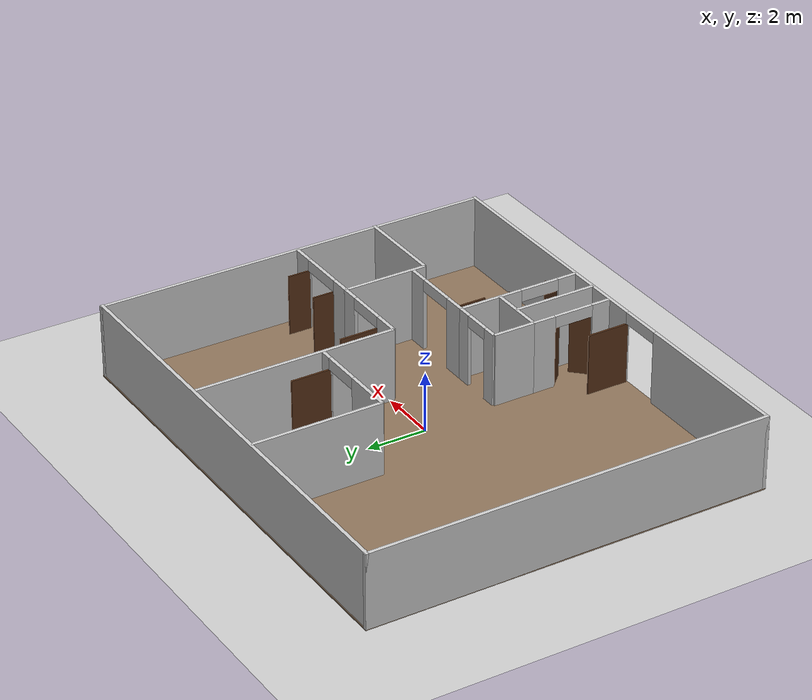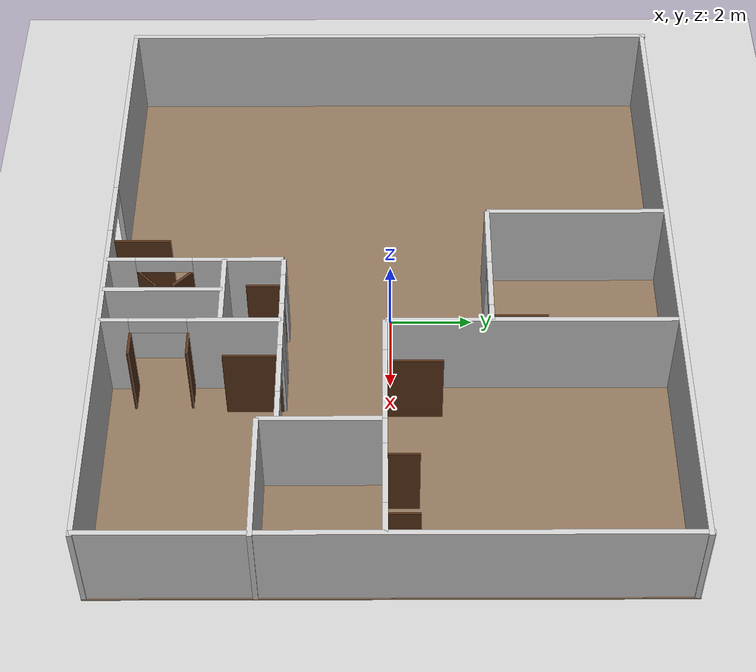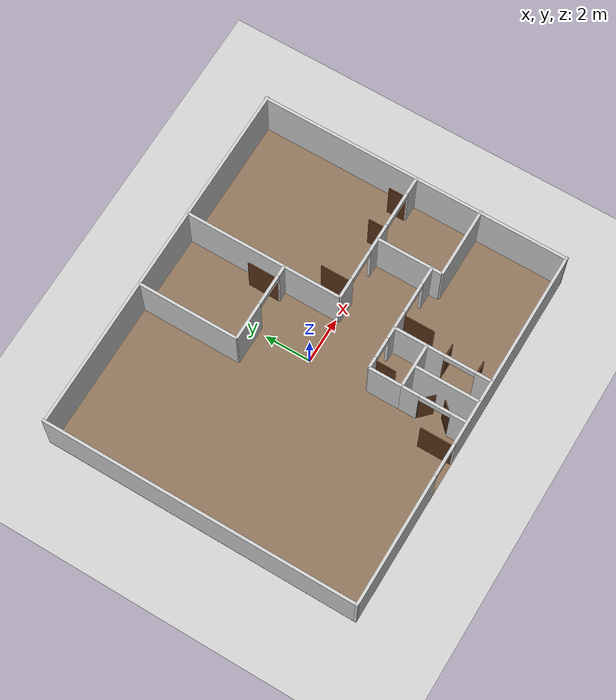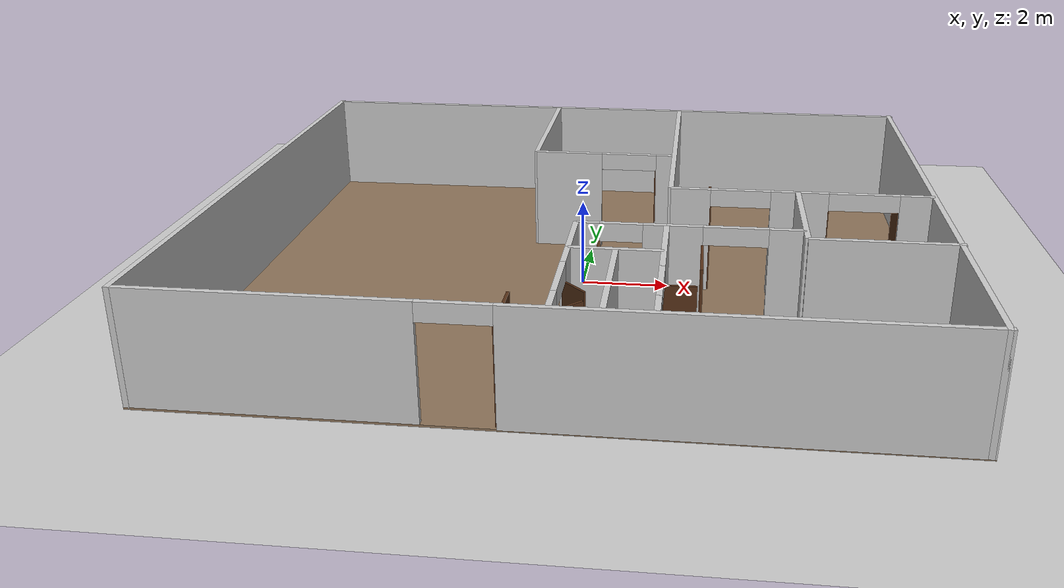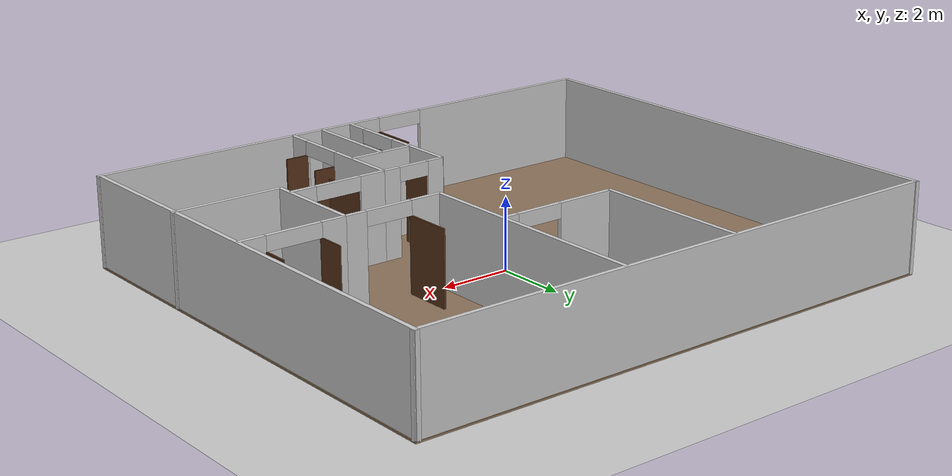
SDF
<?xml version="1.0" ?>
<sdf version="1.6">
  <world name="default">

    <!-- Plugin for simulating physics -->
    <plugin
      filename="gz-sim-physics-system"
      name="gz::sim::systems::Physics">
    </plugin>

    <!-- Plugin for handling user commands -->
    <plugin
      filename="gz-sim-user-commands-system"
      name="gz::sim::systems::UserCommands">
    </plugin>

    <!-- Plugin for broadcasting scene updates -->
    <plugin
      filename="gz-sim-scene-broadcaster-system"
      name="gz::sim::systems::SceneBroadcaster">
    </plugin>

    <!-- Plugin for handling sensors like the LIDAR -->
    <plugin
      filename="gz-sim-sensors-system"
      name="gz::sim::systems::Sensors">
      <render_engine>ogre2</render_engine>
    </plugin>

    <!-- Plugin for IMU -->
    <plugin filename="gz-sim-imu-system"
      name="gz::sim::systems::Imu">
    </plugin>

     <light type="directional" name="sun">
      <cast_shadows>false</cast_shadows>
      <pose>0 0 10 0 0 0</pose>
      <diffuse>1 1 1 1</diffuse>
      <specular>0.5 0.5 0.5 1</specular>
      <attenuation>
        <range>1000</range>
        <constant>0.9</constant>
        <linear>0.01</linear>
        <quadratic>0.001</quadratic>
      </attenuation>
      <direction>-0.5 0.1 -0.9</direction>
    </light>

    <model name="ground_plane">
      <static>true</static>
      <link name="link">
        <collision name="collision">
          <geometry>
            <plane>
              <normal>0 0 1</normal>
              <size>100 100</size>
            </plane>
          </geometry>
          <surface>
            <friction>
              <ode>
                <mu>1.0</mu>
                <mu2>1.0</mu2>
              </ode>
            </friction>
          </surface>
        </collision>
        <visual name="visual">
          <geometry>
            <plane>
              <normal>0 0 1</normal>
              <size>100 100</size>
            </plane>
          </geometry>
          <material>
            <ambient>0.8 0.8 0.8 1</ambient>
            <diffuse>0.8 0.8 0.8 1</diffuse>
            <specular>0.8 0.8 0.8 1</specular>
          </material>
        </visual>
      </link>
    </model>
<model name="house_walls">
  <static>true</static>
  <pose>-7.9575 -6.8025 0 0 0 0</pose>

  <link name="walls">

    <!-- EXTERIOR WALLS                                    -->

    <!-- Left exterior -->
    <collision name="left_ext_collision">
      <pose>0.06 6.8025 1.25 0 0 0</pose>
      <geometry>
        <box><size>0.12 13.605 2.5</size></box>
      </geometry>
    </collision>

    <visual name="left_ext_visual">
      <pose>0.06 6.8025 1.25 0 0 0</pose>
      <geometry>
        <box><size>0.12 13.605 2.5</size></box>
      </geometry>
      <material>
        <ambient>0.8 0.8 0.8 1</ambient>
        <diffuse>0.8 0.8 0.8 1</diffuse>
        <specular>0.4 0.4 0.4 1</specular>
      </material>
    </visual>

    <!-- Right exterior -->
    <collision name="right_ext_collision">
      <pose>15.825 6.8025 1.25 0 0 0</pose>
      <geometry>
        <box><size>0.12 13.605 2.5</size></box>
      </geometry>
    </collision>

    <visual name="right_ext_visual">
      <pose>15.825 6.8025 1.25 0 0 0</pose>
      <geometry>
        <box><size>0.12 13.605 2.5</size></box>
      </geometry>
      <material>
        <ambient>0.8 0.8 0.8 1</ambient>
        <diffuse>0.8 0.8 0.8 1</diffuse>
        <specular>0.4 0.4 0.4 1</specular>
      </material>
    </visual>

    <!-- Back wall -->
    <collision name="back_collision">
      <pose>7.9575 13.515 1.25 0 0 0</pose>
      <geometry>
        <box><size>15.915 0.12 2.5</size></box>
      </geometry>
    </collision>

    <visual name="back_visual">
      <pose>7.9575 13.515 1.25 0 0 0</pose>
      <geometry>
        <box><size>15.915 0.12 2.5</size></box>
      </geometry>
      <material>
        <ambient>0.8 0.8 0.8 1</ambient>
        <diffuse>0.8 0.8 0.8 1</diffuse>
        <specular>0.4 0.4 0.4 1</specular>
      </material>
    </visual>

    <!-- Front wall LEFT of front door -->
    <collision name="front_left_collision">
      <pose>2.85 0.06 1.25 0 0 0</pose>
      <geometry>
        <box><size>5.70 0.12 2.5</size></box>
      </geometry>
    </collision>

    <visual name="front_left_visual">
      <pose>2.85 0.06 1.25 0 0 0</pose>
      <geometry>
        <box><size>5.70 0.12 2.5</size></box>
      </geometry>
      <material>
        <ambient>0.8 0.8 0.8 1</ambient>
        <diffuse>0.8 0.8 0.8 1</diffuse>
        <specular>0.4 0.4 0.4 1</specular>
      </material>
    </visual>

    <!-- Front wall RIGHT of front door -->
    <!-- Front door opening is about 1.43 m wide -->

    <collision name="front_right_collision">
      <pose>11.52 0.06 1.25 0 0 0</pose>
      <geometry>
        <box><size>8.79 0.12 2.5</size></box>
      </geometry>
    </collision>

    <visual name="front_right_visual">
      <pose>11.52 0.06 1.25 0 0 0</pose>
      <geometry>
        <box><size>8.79 0.12 2.5</size></box>
      </geometry>
      <material>
        <ambient>0.8 0.8 0.8 1</ambient>
        <diffuse>0.8 0.8 0.8 1</diffuse>
        <specular>0.4 0.4 0.4 1</specular>
      </material>
    </visual>

    <!-- BATHROOM                                          -->

    <collision name="bath_left_collision">
      <pose>6.525 11.325 1.25 0 0 0</pose>
      <geometry>
        <box><size>0.12 4.38 2.5</size></box>
      </geometry>
    </collision>

    <visual name="bath_left_visual">
      <pose>6.525 11.325 1.25 0 0 0</pose>
      <geometry>
        <box><size>0.12 4.38 2.5</size></box>
      </geometry>
      <material>
        <ambient>0.8 0.8 0.8 1</ambient>
        <diffuse>0.8 0.8 0.8 1</diffuse>
        <specular>0.4 0.4 0.4 1</specular>
      </material>
    </visual>

    <collision name="bath_right_collision">
      <pose>9.975 10.095 1.25 0 0 0</pose>
      <geometry>
        <box><size>0.12 6.84 2.5</size></box>
      </geometry>
    </collision>

    <visual name="bath_right_visual">
      <pose>9.975 10.095 1.25 0 0 0</pose>
      <geometry>
        <box><size>0.12 6.84 2.5</size></box>
      </geometry>
      <material>
        <ambient>0.8 0.8 0.8 1</ambient>
        <diffuse>0.8 0.8 0.8 1</diffuse>
        <specular>0.4 0.4 0.4 1</specular>
      </material>
    </visual>

    <!-- Bathroom lower wall LEFT of doorway -->
    <collision name="bath_bottom_left_collision">
      <pose>7.35 9.15 1.25 0 0 0</pose>
      <geometry>
        <box><size>1.65 0.12 2.5</size></box>
      </geometry>
    </collision>

    <visual name="bath_bottom_left_visual">
      <pose>7.35 9.15 1.25 0 0 0</pose>
      <geometry>
        <box><size>1.65 0.12 2.5</size></box>
      </geometry>
      <material>
        <ambient>0.8 0.8 0.8 1</ambient>
        <diffuse>0.8 0.8 0.8 1</diffuse>
        <specular>0.4 0.4 0.4 1</specular>
      </material>
    </visual>

    <!-- Bathroom lower wall RIGHT of doorway -->
    <collision name="bath_bottom_right_collision">
      <pose>9.75 9.15 1.25 0 0 0</pose>
      <geometry>
        <box><size>0.45 0.12 2.5</size></box>
      </geometry>
    </collision>

    <visual name="bath_bottom_right_visual">
      <pose>9.75 9.15 1.25 0 0 0</pose>
      <geometry>
        <box><size>0.45 0.12 2.5</size></box>
      </geometry>
      <material>
        <ambient>0.8 0.8 0.8 1</ambient>
        <diffuse>0.8 0.8 0.8 1</diffuse>
        <specular>0.4 0.4 0.4 1</specular>
      </material>
    </visual>

    <!-- BEDROOM                                           -->

    <collision name="bed_bottom_left_collision">
      <pose>10.425 6.675 1.25 0 0 0</pose>
      <geometry>
        <box><size>0.90 0.12 2.5</size></box>
      </geometry>
    </collision>

    <visual name="bed_bottom_left_visual">
      <pose>10.425 6.675 1.25 0 0 0</pose>
      <geometry>
        <box><size>0.90 0.12 2.5</size></box>
      </geometry>
      <material>
        <ambient>0.8 0.8 0.8 1</ambient>
        <diffuse>0.8 0.8 0.8 1</diffuse>
        <specular>0.4 0.4 0.4 1</specular>
      </material>
    </visual>

    <!-- Bedroom doorway -->

    <collision name="bed_bottom_right_collision">
      <pose>12.525 6.675 1.25 0 0 0</pose>
      <geometry>
        <box><size>0.60 0.12 2.5</size></box>
      </geometry>
    </collision>

    <visual name="bed_bottom_right_visual">
      <pose>12.525 6.675 1.25 0 0 0</pose>
      <geometry>
        <box><size>0.60 0.12 2.5</size></box>
      </geometry>
      <material>
        <ambient>0.8 0.8 0.8 1</ambient>
        <diffuse>0.8 0.8 0.8 1</diffuse>
        <specular>0.4 0.4 0.4 1</specular>
      </material>
    </visual>

    <!-- MASTER CLOSET                                     -->

    <collision name="master_closet_left_collision">
      <pose>12.825 5.25 1.25 0 0 0</pose>
      <geometry>
        <box><size>0.12 2.85 2.5</size></box>
      </geometry>
    </collision>

    <visual name="master_closet_left_visual">
      <pose>12.825 5.25 1.25 0 0 0</pose>
      <geometry>
        <box><size>0.12 2.85 2.5</size></box>
      </geometry>
      <material>
        <ambient>0.8 0.8 0.8 1</ambient>
        <diffuse>0.8 0.8 0.8 1</diffuse>
        <specular>0.4 0.4 0.4 1</specular>
      </material>
    </visual>

    <collision name="closet_top_left_collision">
      <pose>13.17 6.675 1.25 0 0 0</pose>
      <geometry>
        <box><size>0.69 0.12 2.5</size></box>
      </geometry>
    </collision>

    <visual name="closet_top_left_visual">
      <pose>13.17 6.675 1.25 0 0 0</pose>
      <geometry>
        <box><size>0.69 0.12 2.5</size></box>
      </geometry>
      <material>
        <ambient>0.8 0.8 0.8 1</ambient>
        <diffuse>0.8 0.8 0.8 1</diffuse>
        <specular>0.4 0.4 0.4 1</specular>
      </material>
    </visual>

    <!-- Closet door opening -->

    <collision name="closet_top_right_collision">
      <pose>15.45 6.675 1.25 0 0 0</pose>
      <geometry>
        <box><size>0.75 0.12 2.5</size></box>
      </geometry>
    </collision>

    <visual name="closet_top_right_visual">
      <pose>15.45 6.675 1.25 0 0 0</pose>
      <geometry>
        <box><size>0.75 0.12 2.5</size></box>
      </geometry>
      <material>
        <ambient>0.8 0.8 0.8 1</ambient>
        <diffuse>0.8 0.8 0.8 1</diffuse>
        <specular>0.4 0.4 0.4 1</specular>
      </material>
    </visual>

    <collision name="master_closet_bottom_collision">
      <pose>14.37 3.825 1.25 0 0 0</pose>
      <geometry>
        <box><size>3.09 0.12 2.5</size></box>
      </geometry>
    </collision>

    <visual name="master_closet_bottom_visual">
      <pose>14.37 3.825 1.25 0 0 0</pose>
      <geometry>
        <box><size>3.09 0.12 2.5</size></box>
      </geometry>
      <material>
        <ambient>0.8 0.8 0.8 1</ambient>
        <diffuse>0.8 0.8 0.8 1</diffuse>
        <specular>0.4 0.4 0.4 1</specular>
      </material>
    </visual>

    <!-- HOME OFFICE                                       -->

<!-- Office LEFT wall - lower section below closet doorway -->
<collision name="office_left_lower_collision">
  <pose>9.975 0.405 1.25 0 0 0</pose>
  <geometry>
    <box><size>0.12 0.69 2.5</size></box>
  </geometry>
</collision>

<visual name="office_left_lower_visual">
  <pose>9.975 0.405 1.25 0 0 0</pose>
  <geometry>
    <box><size>0.12 0.69 2.5</size></box>
  </geometry>
  <material>
    <ambient>0.8 0.8 0.8 1</ambient>
    <diffuse>0.8 0.8 0.8 1</diffuse>
  </material>
</visual>

<!-- Office LEFT wall - upper section above closet doorway -->
<collision name="office_left_upper_collision">
  <pose>9.975 3.1875 1.25 0 0 0</pose>
  <geometry>
    <box><size>0.12 2.175 2.5</size></box>
  </geometry>
</collision>

<visual name="office_left_upper_visual">
  <pose>9.975 3.1875 1.25 0 0 0</pose>
  <geometry>
    <box><size>0.12 2.175 2.5</size></box>
  </geometry>
  <material>
    <ambient>0.8 0.8 0.8 1</ambient>
    <diffuse>0.8 0.8 0.8 1</diffuse>
  </material>
</visual>

<!-- Header above office closet doorway -->
<collision name="office_closet_header_collision">
  <pose>9.975 1.425 2.30 0 0 0</pose>
  <geometry>
    <box><size>0.12 1.35 0.40</size></box>
  </geometry>
</collision>

<visual name="office_closet_header_visual">
  <pose>9.975 1.425 2.30 0 0 0</pose>
  <geometry>
    <box><size>0.12 1.35 0.40</size></box>
  </geometry>
  <material>
    <ambient>0.8 0.8 0.8 1</ambient>
    <diffuse>0.8 0.8 0.8 1</diffuse>
  </material>
</visual>

<!-- Office top wall LEFT of doorway -->
<collision name="office_top_left_collision">
  <pose>10.35 4.275 1.25 0 0 0</pose>
  <geometry>
    <box><size>0.75 0.12 2.5</size></box>
  </geometry>
</collision>

<visual name="office_top_left_visual">
  <pose>10.35 4.275 1.25 0 0 0</pose>
  <geometry>
    <box><size>0.75 0.12 2.5</size></box>
  </geometry>
  <material>
    <ambient>0.8 0.8 0.8 1</ambient>
    <diffuse>0.8 0.8 0.8 1</diffuse>
    <specular>0.4 0.4 0.4 1</specular>
  </material>
</visual>

    <!-- Office doorway -->

    <collision name="office_top_right_collision">
      <pose>12.45 4.275 1.25 0 0 0</pose>
      <geometry>
        <box><size>0.75 0.12 2.5</size></box>
      </geometry>
    </collision>

    <visual name="office_top_right_visual">
      <pose>12.45 4.275 1.25 0 0 0</pose>
      <geometry>
        <box><size>0.75 0.12 2.5</size></box>
      </geometry>
      <material>
        <ambient>0.8 0.8 0.8 1</ambient>
        <diffuse>0.8 0.8 0.8 1</diffuse>
        <specular>0.4 0.4 0.4 1</specular>
      </material>
    </visual>

    <!-- UTILITY                                           -->

    <!-- Utility TOP wall with doorway facing bathroom / hall -->

    <!-- Left side of utility doorway -->
    <collision name="utility_top_left_collision">
      <pose>8.3325 4.275 1.25 0 0 0</pose>
      <geometry>
        <box><size>0.495 0.12 2.5</size></box>
      </geometry>
    </collision>

    <visual name="utility_top_left_visual">
      <pose>8.3325 4.275 1.25 0 0 0</pose>
      <geometry>
        <box><size>0.495 0.12 2.5</size></box>
      </geometry>
      <material>
        <ambient>0.8 0.8 0.8 1</ambient>
        <diffuse>0.8 0.8 0.8 1</diffuse>
        <specular>0.4 0.4 0.4 1</specular>
      </material>
    </visual>

    <!-- Right side of utility doorway -->
    <collision name="utility_top_right_collision">
      <pose>9.7275 4.275 1.25 0 0 0</pose>
      <geometry>
        <box><size>0.495 0.12 2.5</size></box>
      </geometry>
    </collision>

    <visual name="utility_top_right_visual">
      <pose>9.7275 4.275 1.25 0 0 0</pose>
      <geometry>
        <box><size>0.495 0.12 2.5</size></box>
      </geometry>
      <material>
        <ambient>0.8 0.8 0.8 1</ambient>
        <diffuse>0.8 0.8 0.8 1</diffuse>
        <specular>0.4 0.4 0.4 1</specular>
      </material>
    </visual>

    <!-- Header above utility doorway -->
    <collision name="utility_top_header_collision">
      <pose>9.03 4.275 2.30 0 0 0</pose>
      <geometry>
        <box><size>0.90 0.12 0.40</size></box>
      </geometry>
    </collision>

    <visual name="utility_top_header_visual">
      <pose>9.03 4.275 2.30 0 0 0</pose>
      <geometry>
        <box><size>0.90 0.12 0.40</size></box>
      </geometry>
      <material>
        <ambient>0.8 0.8 0.8 1</ambient>
        <diffuse>0.8 0.8 0.8 1</diffuse>
      </material>
    </visual>

    <!-- Utility LEFT wall - solid -->
    <collision name="utility_left_collision">
      <pose>8.085 3.57 1.25 0 0 0</pose>
      <geometry>
        <box><size>0.12 1.41 2.5</size></box>
      </geometry>
    </collision>

    <visual name="utility_left_visual">
      <pose>8.085 3.57 1.25 0 0 0</pose>
      <geometry>
        <box><size>0.12 1.41 2.5</size></box>
      </geometry>
      <material>
        <ambient>0.8 0.8 0.8 1</ambient>
        <diffuse>0.8 0.8 0.8 1</diffuse>
        <specular>0.4 0.4 0.4 1</specular>
      </material>
    </visual>

    <collision name="utility_bottom_collision">
      <pose>9.03 2.865 1.25 0 0 0</pose>
      <geometry>
        <box><size>1.89 0.12 2.5</size></box>
      </geometry>
    </collision>

    <visual name="utility_bottom_visual">
      <pose>9.03 2.865 1.25 0 0 0</pose>
      <geometry>
        <box><size>1.89 0.12 2.5</size></box>
      </geometry>
      <material>
        <ambient>0.8 0.8 0.8 1</ambient>
        <diffuse>0.8 0.8 0.8 1</diffuse>
        <specular>0.4 0.4 0.4 1</specular>
      </material>
    </visual>

<!-- WALL HEADERS ABOVE DOORWAYS                       -->

<!-- Front door header -->
<collision name="front_door_header_collision">
  <pose>6.4125 0.06 2.30 0 0 0</pose>
  <geometry>
    <box><size>1.425 0.12 0.40</size></box>
  </geometry>
</collision>

<visual name="front_door_header_visual">
  <pose>6.4125 0.06 2.30 0 0 0</pose>
  <geometry>
    <box><size>1.425 0.12 0.40</size></box>
  </geometry>
  <material>
    <ambient>0.8 0.8 0.8 1</ambient>
    <diffuse>0.8 0.8 0.8 1</diffuse>
  </material>
</visual>

<!-- Bathroom door header -->
<collision name="bathroom_door_header_collision">
  <pose>8.85 9.15 2.30 0 0 0</pose>
  <geometry>
    <box><size>1.35 0.12 0.40</size></box>
  </geometry>
</collision>

<visual name="bathroom_door_header_visual">
  <pose>8.85 9.15 2.30 0 0 0</pose>
  <geometry>
    <box><size>1.35 0.12 0.40</size></box>
  </geometry>
  <material>
    <ambient>0.8 0.8 0.8 1</ambient>
    <diffuse>0.8 0.8 0.8 1</diffuse>
  </material>
</visual>

<!-- Bedroom door header -->
<collision name="bedroom_door_header_collision">
  <pose>11.55 6.675 2.30 0 0 0</pose>
  <geometry>
    <box><size>1.35 0.12 0.40</size></box>
  </geometry>
</collision>

<visual name="bedroom_door_header_visual">
  <pose>11.55 6.675 2.30 0 0 0</pose>
  <geometry>
    <box><size>1.35 0.12 0.40</size></box>
  </geometry>
  <material>
    <ambient>0.8 0.8 0.8 1</ambient>
    <diffuse>0.8 0.8 0.8 1</diffuse>
  </material>
</visual>

<!-- Office door header -->
<collision name="office_door_header_collision">
  <pose>11.40 4.275 2.30 0 0 0</pose>
  <geometry>
    <box><size>1.35 0.12 0.40</size></box>
  </geometry>
</collision>

<visual name="office_door_header_visual">
  <pose>11.40 4.275 2.30 0 0 0</pose>
  <geometry>
    <box><size>1.35 0.12 0.40</size></box>
  </geometry>
  <material>
    <ambient>0.8 0.8 0.8 1</ambient>
    <diffuse>0.8 0.8 0.8 1</diffuse>
  </material>
</visual>

<!-- Master closet door header -->
<collision name="master_closet_door_header_collision">
  <pose>14.295 6.675 2.30 0 0 0</pose>
  <geometry>
    <box><size>1.56 0.12 0.40</size></box>
  </geometry>
</collision>

<visual name="master_closet_door_header_visual">
  <pose>14.295 6.675 2.30 0 0 0</pose>
  <geometry>
    <box><size>1.56 0.12 0.40</size></box>
  </geometry>
  <material>
    <ambient>0.8 0.8 0.8 1</ambient>
    <diffuse>0.8 0.8 0.8 1</diffuse>
  </material>
</visual>

  </link>
</model>

<!-- FRONT ENTRY / OFFICE CLOSETS                       -->
<!-- Entry closet opens LEFT, office closet opens RIGHT -->
<model name="front_entry_closets">
  <static>true</static>
  <pose>-7.9575 -6.8025 0 0 0 0</pose>

  <link name="closets">

    <!-- Shared divider between the two closets -->
    <collision name="closet_divider_collision">
      <pose>9.03 1.4625 1.25 0 0 0</pose>
      <geometry>
        <box><size>0.12 2.805 2.5</size></box>
      </geometry>
    </collision>

    <visual name="closet_divider_visual">
      <pose>9.03 1.4625 1.25 0 0 0</pose>
      <geometry>
        <box><size>0.12 2.805 2.5</size></box>
      </geometry>
      <material>
        <ambient>0.8 0.8 0.8 1</ambient>
        <diffuse>0.8 0.8 0.8 1</diffuse>
      </material>
    </visual>

    <!-- ENTRY CLOSET - LEFT-FACING DOORWAY            -->

    <!-- Wall below doorway -->
    <collision name="entry_closet_lower_wall_collision">
      <pose>8.085 0.405 1.25 0 0 0</pose>
      <geometry>
        <box><size>0.12 0.69 2.5</size></box>
      </geometry>
    </collision>

    <visual name="entry_closet_lower_wall_visual">
      <pose>8.085 0.405 1.25 0 0 0</pose>
      <geometry>
        <box><size>0.12 0.69 2.5</size></box>
      </geometry>
      <material>
        <ambient>0.8 0.8 0.8 1</ambient>
        <diffuse>0.8 0.8 0.8 1</diffuse>
      </material>
    </visual>

    <!-- Wall above doorway -->
    <collision name="entry_closet_upper_wall_collision">
      <pose>8.085 2.4825 1.25 0 0 0</pose>
      <geometry>
        <box><size>0.12 0.765 2.5</size></box>
      </geometry>
    </collision>

    <visual name="entry_closet_upper_wall_visual">
      <pose>8.085 2.4825 1.25 0 0 0</pose>
      <geometry>
        <box><size>0.12 0.765 2.5</size></box>
      </geometry>
      <material>
        <ambient>0.8 0.8 0.8 1</ambient>
        <diffuse>0.8 0.8 0.8 1</diffuse>
      </material>
    </visual>

    <!-- Header above entry closet door -->
    <collision name="entry_closet_header_collision">
      <pose>8.085 1.425 2.30 0 0 0</pose>
      <geometry>
        <box><size>0.12 1.35 0.40</size></box>
      </geometry>
    </collision>

    <visual name="entry_closet_header_visual">
      <pose>8.085 1.425 2.30 0 0 0</pose>
      <geometry>
        <box><size>0.12 1.35 0.40</size></box>
      </geometry>
      <material>
        <ambient>0.8 0.8 0.8 1</ambient>
        <diffuse>0.8 0.8 0.8 1</diffuse>
      </material>
    </visual>

  </link>
</model>

<model name="house_floor">
  <static>true</static>
  <pose>0 0 0.001 0 0 0</pose>

  <link name="floor_link">
    <visual name="floor_visual">
      <geometry>
        <box>
          <size>15.915 13.605 0.05</size>
        </box>
      </geometry>

      <material>
        <ambient>0.55 0.45 0.35 1</ambient>
        <diffuse>0.55 0.45 0.35 1</diffuse>
        <specular>0.2 0.2 0.2 1</specular>
      </material>
    </visual>
  </link>
</model>

<model name="front_door">
  <static>true</static>

  <pose>-0.8325 -6.03 1.05 0 0 1.5708</pose>

  <link name="door_link">

<collision name="door_collision">
  <geometry>
    <box>
      <size>1.425 0.06 2.10</size>
    </box>
  </geometry>
</collision>
    <visual name="door_visual">
      <geometry>
        <box>
          <size>1.425 0.06 2.10</size>
        </box>
      </geometry>

      <material>
        <ambient>0.35 0.20 0.10 1</ambient>
        <diffuse>0.35 0.20 0.10 1</diffuse>
        <specular>0.15 0.15 0.15 1</specular>
      </material>
    </visual>
</link>
</model>
<!-- BATHROOM DOOR - OPEN  -->
<model name="bathroom_door">
  <static>true</static>
  <pose>1.5675 3.0225 1.05 0 0 1.5708</pose>

  <link name="door_link">
 <collision name="door_collision">
      <geometry>
        <box>
          <size>1.35 0.06 2.10</size>
        </box>
      </geometry>
    </collision>
    <visual name="door_visual">
      <geometry>
        <box>
          <size>1.35 0.06 2.10</size>
        </box>
      </geometry>

      <material>
        <ambient>0.35 0.20 0.10 1</ambient>
        <diffuse>0.35 0.20 0.10 1</diffuse>
        <specular>0.15 0.15 0.15 1</specular>
      </material>
    </visual>
  </link>
</model>

<!-- BEDROOM DOOR - OPEN  -->
<model name="bedroom_door">
  <static>true</static>
  <pose>2.9175 0.5475 1.05 0 0 1.5708</pose>

  <link name="door_link">
 <collision name="door_collision">
      <geometry>
        <box>
          <size>1.35 0.06 2.10</size>
        </box>
      </geometry>
    </collision>
    <visual name="door_visual">
      <geometry>
        <box>
          <size>1.35 0.06 2.10</size>
        </box>
      </geometry>

      <material>
        <ambient>0.35 0.20 0.10 1</ambient>
        <diffuse>0.35 0.20 0.10 1</diffuse>
        <specular>0.15 0.15 0.15 1</specular>
      </material>
    </visual>
  </link>
</model>

<!-- OFFICE DOOR - OPEN -->
<model name="office_door">
  <static>true</static>
  <pose>2.7675 -3.2025 1.05 0 0 -1.5708</pose>
  <link name="door_link">
 <collision name="door_collision">
      <geometry>
        <box>
          <size>1.35 0.06 2.10</size>
        </box>
      </geometry>
    </collision>
    <visual name="door_visual">
      <geometry>
        <box>
          <size>1.35 0.06 2.10</size>
        </box>
      </geometry>

      <material>
        <ambient>0.35 0.20 0.10 1</ambient>
        <diffuse>0.35 0.20 0.10 1</diffuse>
        <specular>0.15 0.15 0.15 1</specular>
      </material>
    </visual>
  </link>
</model>

<!-- UTILITY DOOR - OPEN   -->
<!-- Door is on wall facing bathroom / hall -->
<model name="utility_door">
  <static>true</static>

  <!-- Hinged at left side of top opening, swung inward -->
  <pose>0.6225 -2.9775 1.05 0 0 -1.5708</pose>

  <link name="door_link">
 <collision name="door_collision">
      <geometry>
        <box>
          <size>0.90 0.05 2.10</size>
        </box>
      </geometry>
    </collision>
    <visual name="door_visual">
      <geometry>
        <box><size>0.90 0.05 2.10</size></box>
      </geometry>
      <material>
        <ambient>0.35 0.20 0.10 1</ambient>
        <diffuse>0.35 0.20 0.10 1</diffuse>
        <specular>0.15 0.15 0.15 1</specular>
      </material>
    </visual>
  </link>
</model>

<!-- ENTRY CLOSET - LEFT-FACING BIFOLD DOORS            -->

<model name="entry_closet_door_1">
  <static>true</static>
  <pose>0.3625 -5.8125 1.05 0 0 0.7854</pose>

  <link name="door_link">
 <collision name="door_collision">
      <geometry>
        <box>
          <size>0.675 0.05 2.10</size>
        </box>
      </geometry>
    </collision>
    <visual name="door_visual">
      <geometry>
        <box><size>0.675 0.05 2.10</size></box>
      </geometry>
      <material>
        <ambient>0.35 0.20 0.10 1</ambient>
        <diffuse>0.35 0.20 0.10 1</diffuse>
      </material>
    </visual>
  </link>
</model>

<model name="entry_closet_door_2">
  <static>true</static>
  <pose>0.3625 -4.9425 1.05 0 0 -0.7854</pose>

  <link name="door_link">
 <collision name="door_collision">
      <geometry>
        <box>
          <size>0.675 0.05 2.10</size>
        </box>
      </geometry>
    </collision>
    <visual name="door_visual">
      <geometry>
        <box><size>0.675 0.05 2.10</size></box>
      </geometry>
      <material>
        <ambient>0.35 0.20 0.10 1</ambient>
        <diffuse>0.35 0.20 0.10 1</diffuse>
      </material>
    </visual>
  </link>
</model>

<!-- OFFICE CLOSET - RIGHT-FACING BIFOLD DOORS          -->

<model name="office_closet_door_1">
  <static>true</static>
  <pose>2.364 -6.0525 1.05 0 0 0</pose>

  <link name="door_link">
 <collision name="door_collision">
      <geometry>
        <box>
          <size>0.675 0.05 2.10</size>
        </box>
      </geometry>
    </collision>
    <visual name="door_visual">
      <geometry>
        <box><size>0.675 0.05 2.10</size></box>
      </geometry>
      <material>
        <ambient>0.35 0.20 0.10 1</ambient>
        <diffuse>0.35 0.20 0.10 1</diffuse>
      </material>
    </visual>
  </link>
</model>

<model name="office_closet_door_2">
  <static>true</static>
  <pose>2.355 -4.7025 1.05 0 0 0</pose>

  <link name="door_link">
 <collision name="door_collision">
      <geometry>
        <box>
          <size>0.675 0.05 2.10</size>
        </box>
      </geometry>
    </collision>
    <visual name="door_visual">
      <geometry>
        <box><size>0.675 0.05 2.10</size></box>
      </geometry>
      <material>
        <ambient>0.35 0.20 0.10 1</ambient>
        <diffuse>0.35 0.20 0.10 1</diffuse>
      </material>
    </visual>
  </link>
</model>

<!-- MASTER CLOSET - TWO OPEN PANELS   -->

<model name="master_closet_door_left">
  <static>true</static>

  <!-- Left panel -->
  <pose>5.5575 0.2625 1.05 0 0 1.5708</pose>

  <link name="door_link">
 <collision name="door_collision">
      <geometry>
        <box>
          <size>0.78 0.05 2.10</size>
        </box>
      </geometry>
    </collision>
    <visual name="door_visual">
      <geometry>
        <box>
          <size>0.78 0.05 2.10</size>
        </box>
      </geometry>

      <material>
        <ambient>0.35 0.20 0.10 1</ambient>
        <diffuse>0.35 0.20 0.10 1</diffuse>
        <specular>0.15 0.15 0.15 1</specular>
      </material>
    </visual>
  </link>
</model>

<model name="master_closet_door_right">
  <static>true</static>

  <!-- Right panel -->
  <pose>7.1175 0.2625 1.05 0 0 -1.5708</pose>

  <link name="door_link">
 <collision name="door_collision">
      <geometry>
        <box>
          <size>0.78 0.05 2.10</size>
        </box>
      </geometry>
    </collision>
    <visual name="door_visual">
      <geometry>
        <box>
          <size>0.78 0.05 2.10</size>
        </box>
      </geometry>

      <material>
        <ambient>0.35 0.20 0.10 1</ambient>
        <diffuse>0.35 0.20 0.10 1</diffuse>
        <specular>0.15 0.15 0.15 1</specular>
      </material>
    </visual>
  </link>
</model>

</world>
</sdf>
